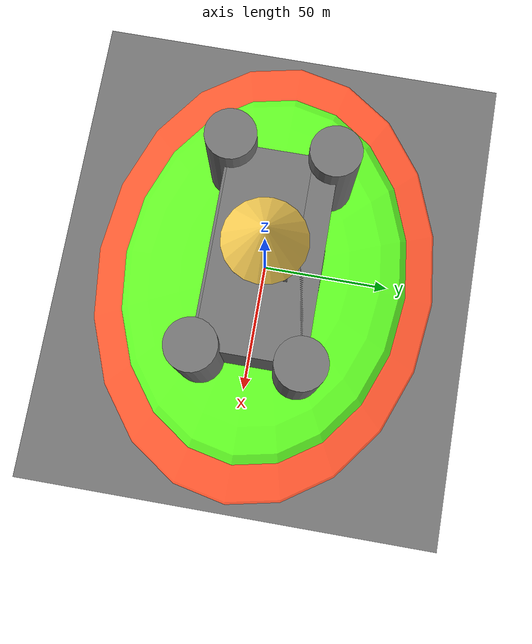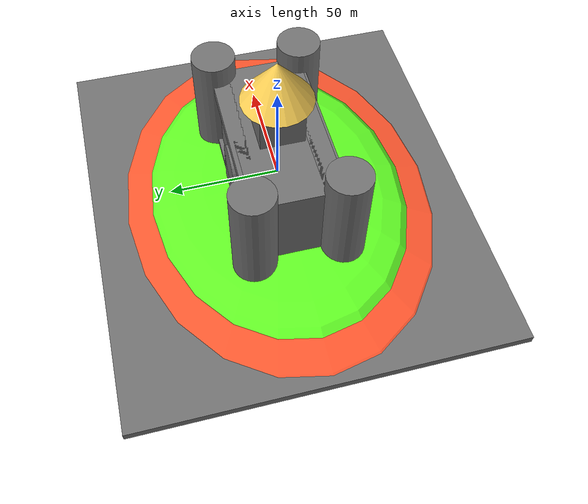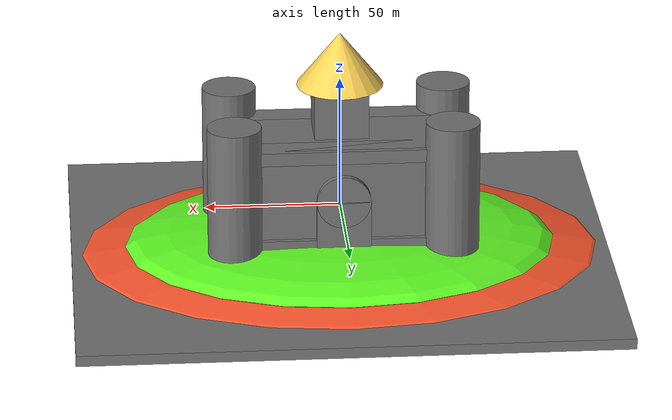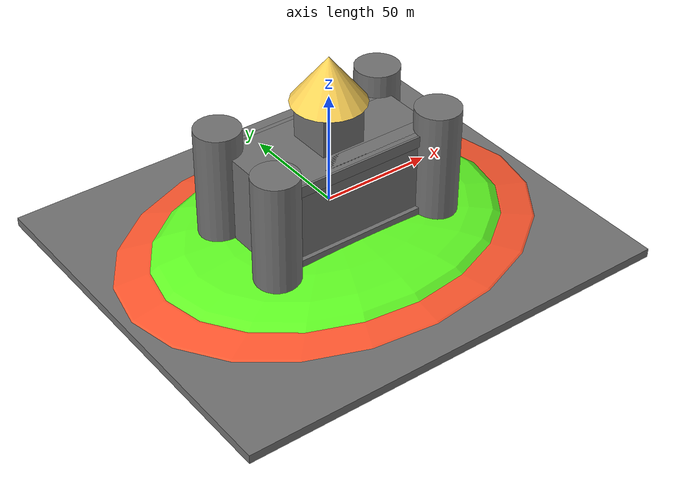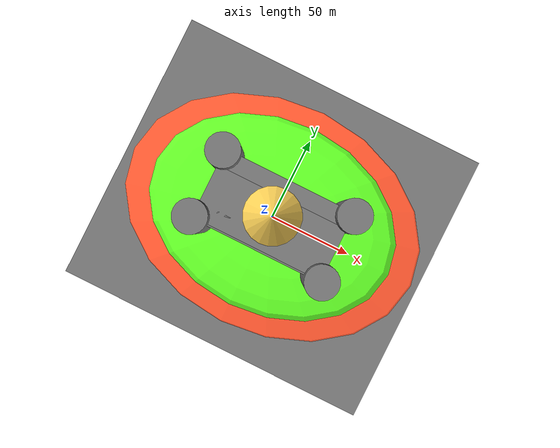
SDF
<sdf version='1.10'>
  <world name='simple_test'>
    <!-- Physics: realistic & consistent on basic machines -->
    <physics name="ode_cpu" type="ode">
      <!-- 500 Hz sim tick; good balance for CPU-only -->
      <max_step_size>0.002</max_step_size>
      <real_time_update_rate>500</real_time_update_rate>
      <real_time_factor>1.0</real_time_factor>
      <ode>
        <solver>
          <type>quick</type>
          <iters>50</iters>
          <sor>1.3</sor>
        </solver>
        <!-- Contact params tuned for stable, non-bouncy flips -->
        <constraints>
          <cfm>0.0</cfm>
          <erp>0.2</erp>
        </constraints>
      </ode>
    </physics>

    <plugin name='gz::sim::systems::Physics' filename='gz-sim-physics-system'/>
    <plugin name='gz::sim::systems::UserCommands' filename='gz-sim-user-commands-system'/>
    <plugin name='gz::sim::systems::SceneBroadcaster' filename='gz-sim-scene-broadcaster-system'/>
    <plugin name='gz::sim::systems::Contact' filename='gz-sim-contact-system'/>
    <plugin filename="gz-sim-sensors-system" name="gz::sim::systems::Sensors"><render_engine>ogre2</render_engine></plugin>

     <!-- Earth gravity -->
    <gravity>0 0 -9.81</gravity>

    <magnetic_field>5.5644999999999998e-06 2.2875799999999999e-05 -4.2388400000000002e-05</magnetic_field>
    <atmosphere type='adiabatic'/>

    <!-- Lighting: simple, stable; shadows off by default -->
    <scene>
      <ambient>0.5 0.5 0.5 1</ambient>
      <background>0.7 0.7 0.75 1</background>
      <shadows>true</shadows>
    </scene>

    <!-- Base platform -->
    <model name="platform">
      <static>true</static>
      <link name = "link_platform">
        <pose>0 0 0 0 0 0</pose>
        <collision name = "col">
            <geometry>
                <box><size>8 8 .5</size></box>
            </geometry>
        </collision>

        <visual name="vis">
            <geometry>
                <box><size>8 8 .5</size></box>
            </geometry>

             <material>
                <ambient>0.35 0.35 0.35 1</ambient>
                <diffuse>0.45 0.45 0.45 1</diffuse>
                <pbr>
                <metal>
                    <albedo_map>model://textures/wood_textures/wood_texture_seamless_1x5.jpg</albedo_map>
                    <roughness>0.9</roughness>
                    <metalness>0.0</metalness>
                </metal>
                </pbr>
          </material>
        </visual>
      </link>
    </model>

    <!--Driving platform-->
    <model name="driving platform">
      <static>true</static>
      <link name="link_base_driving_platform">
        <pose>-4 -8 0 0 0 0</pose>
        <collision name="col">
          <geometry>
            <box><size>16 8 .5</size></box>
          </geometry>
        </collision>

        <visual name="vis">
            <geometry>
                <box><size>16 8 .5</size></box>
            </geometry>

             <material>
                <ambient>0.35 0.35 0.35 1</ambient>
                <diffuse>0.45 0.45 0.45 1</diffuse>
                <pbr>
                <metal>
                    <albedo_map>model://textures/wood_textures/wood_texture_seamless_1x5.jpg</albedo_map>
                    <roughness>0.9</roughness>
                    <metalness>0.0</metalness>
                </metal>
                </pbr>
          </material>
        </visual>
      </link>

      <link name="link_driving_marker">
        <pose>-4 -3 .5 0 0 0</pose>
        <collision name="col">
          <geometry>
            <box><size>.5 2 .5</size></box>
          </geometry>
        </collision>

        <visual name="vis">
            <geometry>
                <box><size>.5 2 .5</size></box>
            </geometry>

             <material>
                <ambient>0.35 0.35 0.35 1</ambient>
                <diffuse>0.45 0.45 0.45 1</diffuse>
                <pbr>
                <metal>
                    <albedo_map>model://textures/stone_textures/stone_wall_seamless_2x1.jpg</albedo_map>
                    <roughness>0.9</roughness>
                    <metalness>0.0</metalness>
                </metal>
                </pbr>
          </material>
        </visual>
      </link>
    </model>

    <!--Rampy-->

    <model name="roll_ramp">
      <static>true</static>

      <link name="link_up_ramp">
        <pose>4.5 -6.5 .75 -0.436 0 0</pose>
        <collision name="col">
          <geometry>
            <box><size>1 4 .5</size></box>
          </geometry>
        </collision>

        <visual name="vis">
            <geometry>
                <box><size>1 4 .5</size></box>
            </geometry>

             <material>
                <ambient>0.35 0.35 0.35 1</ambient>
                <diffuse>0.45 0.45 0.45 1</diffuse>
                <pbr>
                <metal>
                    <albedo_map>model://textures/stone_textures/stone_wall_seamless_2x1.jpg</albedo_map>
                    <roughness>0.9</roughness>
                    <metalness>0.0</metalness>
                </metal>
                </pbr>
          </material>
        </visual>
      </link>

      <link name="link_wait_platform">
        <pose>4.5 -8.5 1.55 0 0 0</pose>
        <collision name="col">
          <geometry>
            <box><size>3 .5 .5</size></box>
          </geometry>
        </collision>

        <visual name="vis">
            <geometry>
                <box><size>2.5 .5 .5</size></box>
            </geometry>

             <material>
                <ambient>0.35 0.35 0.35 1</ambient>
                <diffuse>0.45 0.45 0.45 1</diffuse>
                <pbr>
                <metal>
                    <albedo_map>model://textures/wood_textures/wood_texture_seamless_1x5.jpg</albedo_map>
                    <roughness>0.9</roughness>
                    <metalness>0.0</metalness>
                </metal>
                </pbr>
          </material>
        </visual>
      </link>

      <link name="link_down_ramp">
        <pose>4.5 -10.5 .75 -0.436 0 3.141</pose>
        <collision name="col">
          <geometry>
            <box><size>1 4 .5</size></box>
          </geometry>
        </collision>

        <visual name="vis">
            <geometry>
                <box><size>1 4 .5</size></box>
            </geometry>

             <material>
                <ambient>0.35 0.35 0.35 1</ambient>
                <diffuse>0.45 0.45 0.45 1</diffuse>
                <pbr>
                <metal>
                    <albedo_map>model://textures/stone_textures/stone_wall_seamless_2x1.jpg</albedo_map>
                    <roughness>0.9</roughness>
                    <metalness>0.0</metalness>
                </metal>
                </pbr>
          </material>
        </visual>
      </link>

      <link name="link_roll_off_platform">
        <pose>4.5 -4 0 0 0 0</pose>
        <collision name="col">
          <geometry>
            <box><size>2 20 .5</size></box>
          </geometry>
        </collision>

        <visual name="vis">
            <geometry>
                <box><size>2 20 .5</size></box>
            </geometry>

             <material>
                <ambient>0.35 0.35 0.35 1</ambient>
                <diffuse>0.45 0.45 0.45 1</diffuse>
                <pbr>
                <metal>
                    <albedo_map>model://textures/wood_textures/wood_texture_seamless_1x5.jpg</albedo_map>
                    <roughness>0.9</roughness>
                    <metalness>0.0</metalness>
                </metal>
                </pbr>
          </material>
        </visual>
      </link>

      <link name="link_wall_stopper_hit">
        <pose>4 -14 0 1.571 0 0</pose>
        <collision name="col">
          <geometry>
            <box><size>2 3 .5</size></box>
          </geometry>
        </collision>

        <visual name="vis">
            <geometry>
                <box><size>2 3 .5</size></box>
            </geometry>

             <material>
                <ambient>0.35 0.35 0.35 1</ambient>
                <diffuse>0.45 0.45 0.45 1</diffuse>
                <pbr>
                <metal>
                    <albedo_map>model://textures/wood_textures/wood_texture_seamless_1x5.jpg</albedo_map>
                    <roughness>0.9</roughness>
                    <metalness>0.0</metalness>
                </metal>
                </pbr>
          </material>
        </visual>
      </link>
    </model>

    <!-- This is the coast waves model stored in models/coast_waves_2 -->
    <include>
      <name>coast_waves_2</name>
      <uri>model://coast_waves_2/model.sdf</uri>
      <pose>0 0 -10 0 0 0</pose>
    </include>

    <light name='sun' type='directional'>
      <pose>0 0 10 0 0 0</pose>
      <cast_shadows>true</cast_shadows>
      <intensity>1</intensity>
      <direction>-0.5 0.10000000000000001 -0.90000000000000002</direction>
      <diffuse>0.800000012 0.800000012 0.800000012 1</diffuse>
      <specular>0.200000003 0.200000003 0.200000003 1</specular>
      <attenuation>
        <range>1000</range>
        <linear>0.01</linear>
        <constant>0.90000000000000002</constant>
        <quadratic>0.001</quadratic>
      </attenuation>
      <spot>
        <inner_angle>0</inner_angle>
        <outer_angle>0</outer_angle>
        <falloff>0</falloff>
      </spot>
    </light>
  </world>
</sdf>

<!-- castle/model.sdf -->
<sdf version="1.6">
  <model name="castle">
      <static>true</static>
        <link name="link_moat">
          <pose>0 0 -10 0 0 -1.571</pose>
          <collision name="col">
            <geometry>
              <ellipsoid>
                <radii>75 100 8</radii>
              </ellipsoid>
            </geometry>
          </collision>

          <visual name="vis">
            <geometry>
              <ellipsoid>
                <radii>75 100 8</radii>
              </ellipsoid>
            </geometry>

            <material>
              <ambient>1 0.24 0.08 1</ambient>
              <diffuse>1 0.34 0.18 1</diffuse>

              <pbr>
                <metal>
                  <albedo_map>textures/misc_textures/lava_5.jpeg</albedo_map>
                  <roughness>0.8</roughness>
                  <metalness>0.2</metalness>
                </metal>
              </pbr>
            </material>
          </visual>
        </link>

        <link name="link_ground">
        <pose>0 0 -5 0 0 -1.571</pose>
          <collision name="col">
            <geometry>
              <ellipsoid>
                <radii>60 80 8</radii>
              </ellipsoid>
            </geometry>
          </collision>

          <visual name="vis">
            <geometry>
              <ellipsoid>
                <radii>60 80 8</radii>
              </ellipsoid>
            </geometry>

            <material>
            <ambient>0.28 0.94 0.04 1</ambient>
            <diffuse>0.38 1 0.14 1</diffuse>

              <pbr>
                <metal>
                  <albedo_map>textures/grass_textures/green_grass_seamless.jpg</albedo_map>
                  <roughness>1</roughness>
                  <metalness>0.0</metalness>
                </metal>
              </pbr>
            </material>
          </visual>
        </link>

        <link name="link_bottom_ground">
          <pose>0 0 -10 0 0 0</pose>
          <collision name="col">
            <geometry><box><size>200 175 4</size></box></geometry>
          </collision>

          <visual name="vis">
            <geometry><box><size>200 175 4</size></box></geometry>

            <material>
              <ambient>0.35 0.35 0.35 1</ambient>
              <diffuse>0.45 0.45 0.45 1</diffuse>
              <pbr>
                <metal>
                  <albedo_map>textures/soil_textures/dirt.jpeg</albedo_map>
                  <roughness>1</roughness>
                  <metalness>0.0</metalness>
                </metal>
              </pbr>
            </material>
          </visual>
        </link>

        <link name="link_base">
        <pose>0 0 20 0 0 0</pose>
        <collision name="col"><geometry><box><size>40 80 40</size></box></geometry></collision>
        <visual name="vis">
          <geometry><box><size>80 40 40</size></box></geometry>
          <material>
            <ambient>0.35 0.35 0.35 1</ambient>
            <diffuse>0.45 0.45 0.45 1</diffuse>
            <!-- This tag and its contents add texture (an image) to our models -->
            <pbr>
              <metal>
                <!-- Point to your image -->
                <albedo_map>textures/stone_textures/stone_wall_seamless_2x1.jpg</albedo_map>
                <!-- Optional: roughness/metalness for a matte, non-metal look -->
                <roughness>0.9</roughness>
                <metalness>0.0</metalness>
              </metal>
            </pbr>
          </material>
        </visual>
      </link>

      <link name="link_tower1">
      <pose>-40 -20 25 0 0 0</pose>
        <collision name="col"><geometry><cylinder><radius>10</radius><length>50</length></cylinder></geometry></collision>
        <visual name="vis">
          <geometry><cylinder><radius>10</radius><length>50</length></cylinder></geometry>
          <material>
            <ambient>0.35 0.35 0.35 1</ambient>
            <diffuse>0.45 0.45 0.45 1</diffuse>
            <pbr>
              <metal>
                <albedo_map>textures/stone_textures/stone_wall_seamless_1x1.jpg</albedo_map>
                <roughness>0.9</roughness>
                <metalness>0.0</metalness>
              </metal>
            </pbr>
          </material>
        </visual>
      </link>

      <link name="link_tower2">
      <pose>-40 20 25 0 0 0</pose>
        <collision name="col"><geometry><cylinder><radius>10</radius><length>50</length></cylinder></geometry></collision>
        <visual name="vis">
          <geometry><cylinder><radius>10</radius><length>50</length></cylinder></geometry>
          <material>
            <ambient>0.35 0.35 0.35 1</ambient>
            <diffuse>0.45 0.45 0.45 1</diffuse>
            <pbr>
              <metal>
                <albedo_map>textures/stone_textures/stone_wall_seamless_1x1.jpg</albedo_map>
                <roughness>0.9</roughness>
                <metalness>0.0</metalness>
              </metal>
            </pbr>
          </material>
        </visual>
      </link>

      <link name="link_tower3">
      <pose>40 -20 25 0 0 0</pose>
        <collision name="col"><geometry><cylinder><radius>10</radius><length>50</length></cylinder></geometry></collision>
        <visual name="vis">
          <geometry><cylinder><radius>10</radius><length>50</length></cylinder></geometry>
          <material>
            <ambient>0.35 0.35 0.35 1</ambient>
            <diffuse>0.45 0.45 0.45 1</diffuse>
            <pbr>
              <metal>
                <albedo_map>textures/stone_textures/stone_wall_seamless_1x1.jpg</albedo_map>
                <roughness>0.9</roughness>
                <metalness>0.0</metalness>
              </metal>
            </pbr>
          </material>
        </visual>
      </link>

      <link name="link_tower4">
      <pose>40 20 25 0 0 0</pose>
        <collision name="col"><geometry><cylinder><radius>10</radius><length>50</length></cylinder></geometry></collision>
        <visual name="vis">
          <geometry><cylinder><radius>10</radius><length>50</length></cylinder></geometry>
          <material>
            <ambient>0.35 0.35 0.35 1</ambient>
            <diffuse>0.45 0.45 0.45 1</diffuse>
            <pbr>
              <metal>
                <albedo_map>textures/stone_textures/stone_wall_seamless_1x1.jpg</albedo_map>
                <roughness>0.9</roughness>
                <metalness>0.0</metalness>
              </metal>
            </pbr>
          </material>
        </visual>
      </link>

      <link name="link_trim1">
        <pose>0 17 2.5 0 0 0</pose>
        <collision name="col">
            <geometry>
                <box><size>80 10 5</size></box>
            </geometry>
        </collision>
        <visual name="vis">
            <geometry>
                <box><size>80 10 5</size></box>
            </geometry>
          <material>
            <ambient>0.35 0.35 0.35 1</ambient>
            <diffuse>0.45 0.45 0.45 1</diffuse>
            <pbr>
              <metal>
                <albedo_map>textures/stone_textures/stone_wall_seamless_2x1.jpg</albedo_map>
                <roughness>0.9</roughness>
                <metalness>0.0</metalness>
              </metal>
            </pbr>
          </material>
        </visual>
    </link>

    <link name="link_trim2">
        <pose> 0 -17 2.5 0 0 0</pose>
        <collision name="col">
            <geometry>
                <box><size>80 10 5</size></box>
            </geometry>
        </collision>
        <visual name="vis">
            <geometry>
                <box><size>80 10 5</size></box>
            </geometry>
            <material>
                <ambient>0.35 0.35 0.35 1</ambient>
                <diffuse>0.45 0.45 0.45 1</diffuse>
                <pbr>
                    <metal>
                        <albedo_map>textures/stone_textures/stone_wall_seamless_2x1.jpg</albedo_map>
                        <roughness>0.9</roughness>
                        <metalness>0.0</metalness>
                    </metal>
                </pbr>
            </material>
        </visual>
    </link>

    <link name="link_trim3">
        <pose>0 17 37.5 0 0 0</pose>
        <collision name="col">
            <geometry>
                <box><size>80 10 5</size></box>
            </geometry>
        </collision>
        <visual name="vis">
            <geometry>
                <box><size>80 10 5</size></box>
            </geometry>
          <material>
            <ambient>0.35 0.35 0.35 1</ambient>
            <diffuse>0.45 0.45 0.45 1</diffuse>
            <pbr>
              <metal>
                <albedo_map>textures/stone_textures/stone_wall_seamless_2x1.jpg</albedo_map>
                <roughness>0.9</roughness>
                <metalness>0.0</metalness>
              </metal>
            </pbr>
          </material>
        </visual>
    </link>

    <link name="link_trim4">
        <pose> 0 -16 37.5 0 0 0</pose>
        <collision name="col">
            <geometry>
                <box><size>80 10 5</size></box>
            </geometry>
        </collision>
        <visual name="vis">
            <geometry>
                <box><size>80 10 5</size></box>
            </geometry>
            <material>
                <ambient>0.35 0.35 0.35 1</ambient>
                <diffuse>0.45 0.45 0.45 1</diffuse>
                <pbr>
                    <metal>
                        <albedo_map>textures/stone_textures/stone_wall_seamless_2x1.jpg</albedo_map>
                        <roughness>0.9</roughness>
                        <metalness>0.0</metalness>
                    </metal>
                </pbr>
            </material>
        </visual>
    </link>

    <link name="link_middle_tower">
        <pose>0 0 30 0 0 0</pose>
        <collision name="col"><geometry><box><size>20 20 60</size></box></geometry></collision>
        <visual name="vis">
          <geometry><box><size>20 20 60</size></box></geometry>
          <material>
            <ambient>0.35 0.35 0.35 1</ambient>
            <diffuse>0.45 0.45 0.45 1</diffuse>
            <!-- This tag and its contents add texture (an image) to our models -->
            <pbr>
              <metal>
                <!-- Point to your image -->
                <albedo_map>textures/stone_textures/stone_wall_seamless_2x1.jpg</albedo_map>
                <!-- Optional: roughness/metalness for a matte, non-metal look -->
                <roughness>0.9</roughness>
                <metalness>0.0</metalness>
              </metal>
            </pbr>
          </material>
        </visual>
    </link>

    <link name="link_draw_bottom">
        <pose>0 20 10 0 0 0</pose>
        <collision name="col"><geometry><box><size>20 5 20</size></box></geometry></collision>
        <visual name="vis">
          <geometry><box><size>20 5 20</size></box></geometry>
          <material>
            <ambient>0.35 0.35 0.35 1</ambient>
            <diffuse>0.45 0.45 0.45 1</diffuse>
            <!-- This tag and its contents add texture (an image) to our models -->
            <pbr>
              <metal>
                <!-- Point to your image -->
                <albedo_map>textures/wood_textures/wood_texture_seamless_1x2.jpg</albedo_map>
                <!-- Optional: roughness/metalness for a matte, non-metal look -->
                <roughness>0.9</roughness>
                <metalness>0.0</metalness>
              </metal>
            </pbr>
          </material>
        </visual>
    </link>

    <link name="link_draw_top">
        <pose>0 20 20 1.571 0 0</pose>
        <collision name="col"><geometry><cylinder><radius>10</radius><length>5</length></cylinder></geometry></collision>
        <visual name="vis">
          <geometry><cylinder><radius>10</radius><length>5</length></cylinder></geometry>
          <material>
            <ambient>0.35 0.35 0.35 1</ambient>
            <diffuse>0.45 0.45 0.45 1</diffuse>
            <pbr>
              <metal>
                <albedo_map>model://textures/wood_textures/wood_texture_seamless_1x1.jpg</albedo_map>
                <roughness>0.9</roughness>
                <metalness>0.0</metalness>
              </metal>
            </pbr>
          </material>
        </visual>
    </link>

    <link name="link_tower_roof">
    <pose>0 0 68 0 0 0</pose>

        <collision name="col">
            <geometry>
                <cone>
                    <radius>16</radius>
                    <length>20</length>
                </cone>
            </geometry>
        </collision>

        <visual name="vis">
            <geometry>
                <cone>
                    <radius>16</radius>
                    <length>20</length>
                </cone>
            </geometry>
          <material>
            <ambient>1 0.73 0.24 1</ambient>
            <diffuse>1 0.83 0.34 1</diffuse>
            <pbr>
              <metal>
                <albedo_map>model://textures/wood_textures/wood_texture_seamless_1x10.jpg</albedo_map>
                <roughness>0.9</roughness>
                <metalness>0.0</metalness>
              </metal>
            </pbr>
          </material>
        </visual>
    </link>
  </model>
</sdf>
